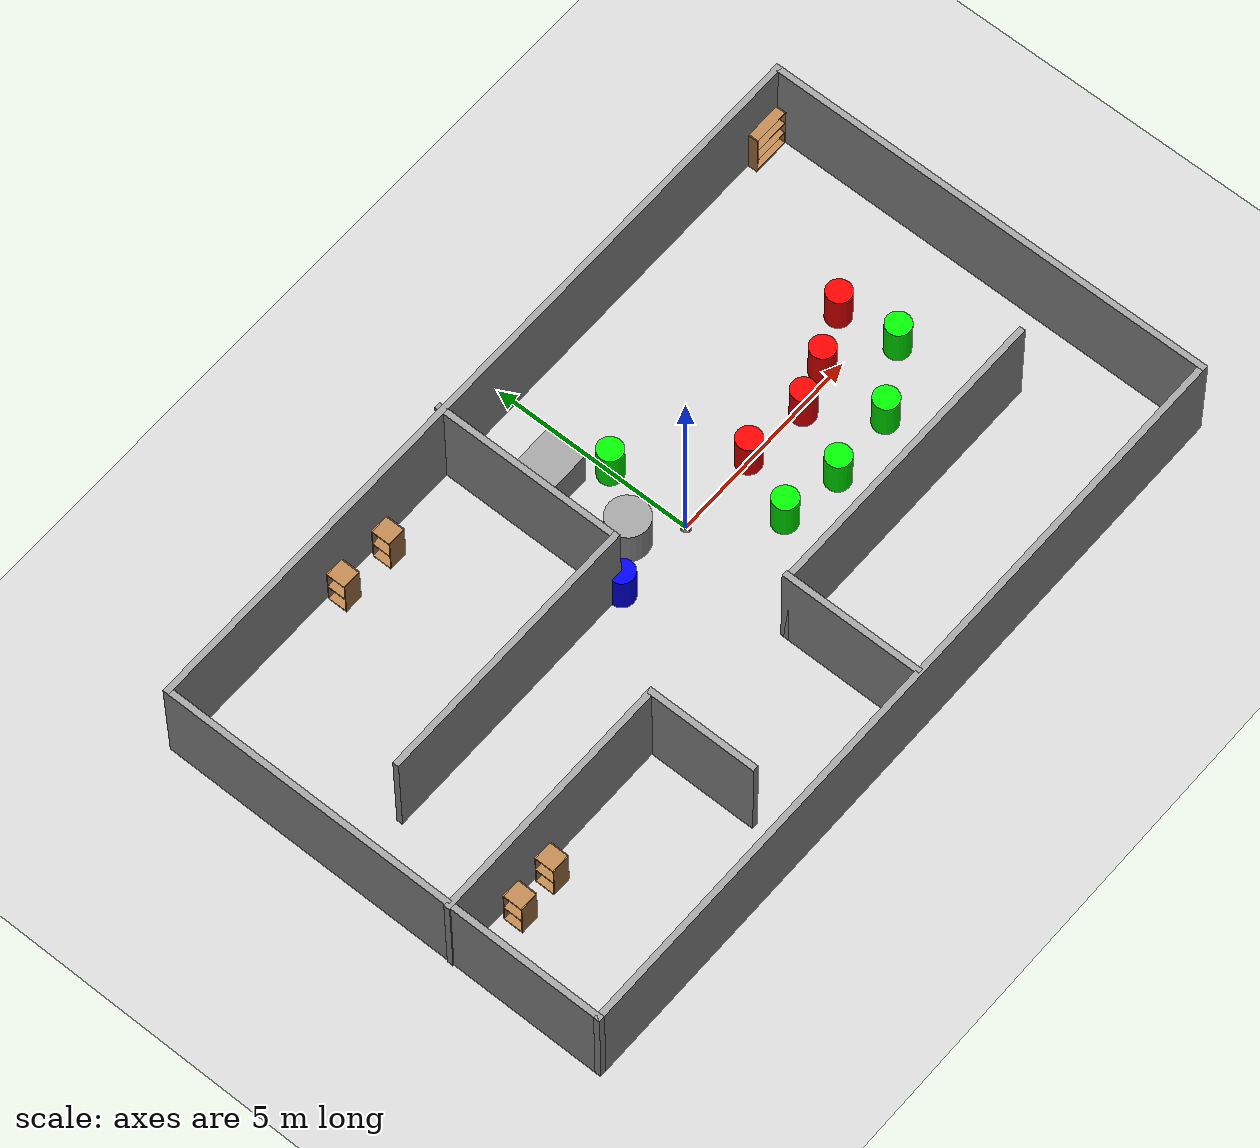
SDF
<sdf version="1.7">
 <world name="default">
  <light name="sun" type="directional">
   <pose>0 0 10 0 -0 0</pose>
   <diffuse>0.8 0.8 0.8 1</diffuse>
   <specular>0.2 0.2 0.2 1</specular>
   <attenuation>
    <range>1000</range>
    <constant>0.9</constant>
    <linear>0.01</linear>
    <quadratic>0.001</quadratic>
   </attenuation>
   <direction>-0.5 0.1 -0.9</direction>
   <spot><inner_angle>0</inner_angle><outer_angle>0</outer_angle><falloff>0</falloff></spot>
  </light>
  <model name="red_cylinder">
   <pose>2 0 0.5 0 -0 0</pose>
   <static>1</static>
   <link name="link">
    <collision name="collision">
     <geometry><cylinder><radius>0.3</radius><length>1</length></cylinder></geometry>
    </collision>
    <visual name="visual">
     <geometry><cylinder><radius>0.3</radius><length>1</length></cylinder></geometry>
     <material><ambient>1 0 0 1</ambient><diffuse>1 0 0 1</diffuse><specular>0.2 0.2 0.2 1</specular></material>
    </visual>
   </link>
  </model>
  <model name="green_cylinder">
   <pose>0 2 0.5 0 -0 0</pose>
   <static>1</static>
   <link name="link">
    <collision name="collision">
     <geometry><cylinder><radius>0.3</radius><length>1</length></cylinder></geometry>
    </collision>
    <visual name="visual">
     <geometry><cylinder><radius>0.3</radius><length>1</length></cylinder></geometry>
     <material><ambient>0 1 0 1</ambient><diffuse>0 1 0 1</diffuse><specular>0.2 0.2 0.2 1</specular></material>
    </visual>
   </link>
  </model>
  <model name="blue_cylinder">
   <pose>-2 0 0.5 0 -0 0</pose>
   <static>1</static>
   <link name="link">
    <collision name="collision">
     <geometry><cylinder><radius>0.3</radius><length>1</length></cylinder></geometry>
    </collision>
    <visual name="visual">
     <geometry><cylinder><radius>0.3</radius><length>1</length></cylinder></geometry>
     <material><ambient>0 0 1 1</ambient><diffuse>0 0 1 1</diffuse><specular>0.2 0.2 0.2 1</specular></material>
    </visual>
   </link>
  </model>
  <model name="ground_plane">
   <static>1</static>
   <link name="link">
    <collision name="collision">
     <geometry><plane><normal>0 0 1</normal><size>100 100</size></plane></geometry>
     <surface><friction><ode><mu>100</mu><mu2>50</mu2></ode></friction></surface>
    </collision>
    <visual name="visual">
     <cast_shadows>0</cast_shadows>
     <geometry><plane><normal>0 0 1</normal><size>100 100</size></plane></geometry>
     <material>
      <script><uri>file://media/materials/scripts/gazebo.material</uri><name>Gazebo/Grey</name></script>
     </material>
    </visual>
   </link>
  </model>
  <gravity>0 0 -9.8</gravity>
  <magnetic_field>6e-06 2.3e-05 -4.2e-05</magnetic_field>
  <atmosphere type="adiabatic"/>
  <physics type="ode">
   <max_step_size>0.001</max_step_size>
   <real_time_factor>1</real_time_factor>
   <real_time_update_rate>1000</real_time_update_rate>
  </physics>
  <scene><ambient>0.4 0.4 0.4 1</ambient><background>0.7 0.7 0.7 1</background><shadows>1</shadows></scene>
  <audio><device>default</device></audio>
  <spherical_coordinates>
   <surface_model>EARTH_WGS84</surface_model>
   <latitude_deg>0</latitude_deg>
   <longitude_deg>0</longitude_deg>
   <elevation>0</elevation>
   <heading_deg>0</heading_deg>
  </spherical_coordinates>
  <model name="room">
   <pose>-0.972666 -0.90388 0 0 -0 0</pose>
   <link name="Wall_66">
    <collision name="Wall_66_Collision">
     <geometry><box><size>19 0.15 2.5</size></box></geometry>
     <pose>0 0 1.25 0 -0 0</pose>
    </collision>
    <visual name="Wall_66_Visual">
     <pose>0 0 1.25 0 -0 0</pose>
     <geometry><box><size>19 0.15 2.5</size></box></geometry>
     <material>
      <script><uri>file://media/materials/scripts/gazebo.material</uri><name>Gazebo/Grey</name></script>
      <ambient>1 1 1 1</ambient>
     </material>
     <meta><layer>0</layer></meta>
    </visual>
    <pose>0.013921 5.50955 0 0 -0 0</pose>
   </link>
   <link name="Wall_67">
    <collision name="Wall_67_Collision">
     <geometry><box><size>11.25 0.15 2.5</size></box></geometry>
     <pose>0 0 1.25 0 -0 0</pose>
    </collision>
    <visual name="Wall_67_Visual">
     <pose>0 0 1.25 0 -0 0</pose>
     <geometry><box><size>11.25 0.15 2.5</size></box></geometry>
     <material>
      <script><uri>file://media/materials/scripts/gazebo.material</uri><name>Gazebo/Grey</name></script>
      <ambient>1 1 1 1</ambient>
     </material>
     <meta><layer>0</layer></meta>
    </visual>
    <pose>9.43892 -0.040455 0 0 -0 -1.5708</pose>
   </link>
   <link name="Wall_68">
    <collision name="Wall_68_Collision">
     <geometry><box><size>19 0.15 2.5</size></box></geometry>
     <pose>0 0 1.25 0 -0 0</pose>
    </collision>
    <visual name="Wall_68_Visual">
     <pose>0 0 1.25 0 -0 0</pose>
     <geometry><box><size>19 0.15 2.5</size></box></geometry>
     <material>
      <script><uri>file://media/materials/scripts/gazebo.material</uri><name>Gazebo/Grey</name></script>
      <ambient>1 1 1 1</ambient>
     </material>
     <meta><layer>0</layer></meta>
    </visual>
    <pose>0.013921 -5.59046 0 0 -0 3.14159</pose>
   </link>
   <link name="Wall_69">
    <collision name="Wall_69_Collision">
     <geometry><box><size>11.25 0.15 2.5</size></box></geometry>
     <pose>0 0 1.25 0 -0 0</pose>
    </collision>
    <visual name="Wall_69_Visual">
     <pose>0 0 1.25 0 -0 0</pose>
     <geometry><box><size>11.25 0.15 2.5</size></box></geometry>
     <material>
      <script><uri>file://media/materials/scripts/gazebo.material</uri><name>Gazebo/Grey</name></script>
      <ambient>1 1 1 1</ambient>
     </material>
     <meta><layer>0</layer></meta>
    </visual>
    <pose>-9.41108 -0.040455 0 0 -0 1.5708</pose>
   </link>
   <link name="Wall_71">
    <collision name="Wall_71_Collision">
     <geometry><box><size>4.75 0.15 2.5</size></box></geometry>
     <pose>0 0 1.25 0 -0 0</pose>
    </collision>
    <visual name="Wall_71_Visual">
     <pose>0 0 1.25 0 -0 0</pose>
     <geometry><box><size>4.75 0.15 2.5</size></box></geometry>
     <material>
      <script><uri>file://media/materials/scripts/gazebo.material</uri><name>Gazebo/Grey</name></script>
      <ambient>1 1 1 1</ambient>
     </material>
     <meta><layer>0</layer></meta>
    </visual>
    <pose>-1.11769 3.29046 0 0 -0 -1.5708</pose>
   </link>
   <link name="Wall_72">
    <collision name="Wall_72_Collision">
     <geometry><box><size>6.75 0.15 2.5</size></box></geometry>
     <pose>0 0 1.25 0 -0 0</pose>
    </collision>
    <visual name="Wall_72_Visual">
     <pose>0 0 1.25 0 -0 0</pose>
     <geometry><box><size>6.75 0.15 2.5</size></box></geometry>
     <material>
      <script><uri>file://media/materials/scripts/gazebo.material</uri><name>Gazebo/Grey</name></script>
      <ambient>1 1 1 1</ambient>
     </material>
     <meta><layer>0</layer></meta>
    </visual>
    <pose>-4.41769 0.990456 0 0 -0 3.14159</pose>
   </link>
   <link name="Wall_79">
    <collision name="Wall_79_Collision">
     <geometry><box><size>3.47722 0.15 2.5</size></box></geometry>
     <pose>0 0 1.25 0 -0 0</pose>
    </collision>
    <visual name="Wall_79_Visual">
     <pose>0 0 1.25 0 -0 0</pose>
     <geometry><box><size>3.47722 0.15 2.5</size></box></geometry>
     <material>
      <script><uri>file://media/materials/scripts/gazebo.material</uri><name>Gazebo/Grey</name></script>
      <ambient>1 1 1 1</ambient>
     </material>
     <meta><layer>0</layer></meta>
    </visual>
    <pose>0.391784 -3.86799 0 0 -0 1.5708</pose>
   </link>
   <link name="Wall_80">
    <collision name="Wall_80_Collision">
     <geometry><box><size>7.5 0.15 2.5</size></box></geometry>
     <pose>0 0 1.25 0 -0 0</pose>
    </collision>
    <visual name="Wall_80_Visual">
     <pose>0 0 1.25 0 -0 0</pose>
     <geometry><box><size>7.5 0.15 2.5</size></box></geometry>
     <material>
      <script><uri>file://media/materials/scripts/gazebo.material</uri><name>Gazebo/Grey</name></script>
      <ambient>1 1 1 1</ambient>
     </material>
     <meta><layer>0</layer></meta>
    </visual>
    <pose>4.06678 -2.24484 0 0 -0 0</pose>
   </link>
   <link name="Wall_85">
    <collision name="Wall_85_Collision">
     <geometry><box><size>6.25 0.15 2.5</size></box></geometry>
     <pose>0 0 1.25 0 -0 0</pose>
    </collision>
    <visual name="Wall_85_Visual">
     <pose>0 0 1.25 0 -0 0</pose>
     <geometry><box><size>6.25 0.15 2.5</size></box></geometry>
     <material>
      <script><uri>file://media/materials/scripts/gazebo.material</uri><name>Gazebo/Grey</name></script>
      <ambient>1 1 1 1</ambient>
     </material>
     <meta><layer>0</layer></meta>
    </visual>
    <pose>-6.38892 -1.80969 0 0 -0 0</pose>
   </link>
   <link name="Wall_86">
    <collision name="Wall_86_Collision">
     <geometry><box><size>2.75 0.15 2.5</size></box></geometry>
     <pose>0 0 1.25 0 -0 0</pose>
    </collision>
    <visual name="Wall_86_Visual">
     <pose>0 0 1.25 0 -0 0</pose>
     <geometry><box><size>2.75 0.15 2.5</size></box></geometry>
     <material>
      <script><uri>file://media/materials/scripts/gazebo.material</uri><name>Gazebo/Grey</name></script>
      <ambient>1 1 1 1</ambient>
     </material>
     <meta><layer>0</layer></meta>
    </visual>
    <pose>-3.33892 -3.10969 0 0 -0 -1.5708</pose>
   </link>
   <static>1</static>
  </model>
  <model name="bookshelf">
   <static>1</static>
   <link name="link">
    <inertial><mass>1</mass></inertial>
    <collision name="back">
     <pose>0 0.005 0.6 0 -0 0</pose>
     <geometry><box><size>0.9 0.01 1.2</size></box></geometry>
    </collision>
    <visual name="visual1">
     <pose>0 0.005 0.6 0 -0 0</pose>
     <geometry><box><size>0.9 0.01 1.2</size></box></geometry>
     <material>
      <script><uri>file://media/materials/scripts/gazebo.material</uri><name>Gazebo/Wood</name></script>
     </material>
    </visual>
    <collision name="left_side">
     <pose>0.45 -0.195 0.6 0 -0 0</pose>
     <geometry><box><size>0.02 0.4 1.2</size></box></geometry>
    </collision>
    <visual name="visual2">
     <pose>0.45 -0.195 0.6 0 -0 0</pose>
     <geometry><box><size>0.02 0.4 1.2</size></box></geometry>
     <material>
      <script><uri>file://media/materials/scripts/gazebo.material</uri><name>Gazebo/Wood</name></script>
     </material>
    </visual>
    <collision name="right_side">
     <pose>-0.45 -0.195 0.6 0 -0 0</pose>
     <geometry><box><size>0.02 0.4 1.2</size></box></geometry>
    </collision>
    <visual name="visual3">
     <pose>-0.45 -0.195 0.6 0 -0 0</pose>
     <geometry><box><size>0.02 0.4 1.2</size></box></geometry>
     <material>
      <script><uri>file://media/materials/scripts/gazebo.material</uri><name>Gazebo/Wood</name></script>
     </material>
    </visual>
    <collision name="bottom">
     <pose>0 -0.195 0.03 0 -0 0</pose>
     <geometry><box><size>0.88 0.4 0.06</size></box></geometry>
    </collision>
    <visual name="visual4">
     <pose>0 -0.195 0.03 0 -0 0</pose>
     <geometry><box><size>0.88 0.4 0.06</size></box></geometry>
     <material>
      <script><uri>file://media/materials/scripts/gazebo.material</uri><name>Gazebo/Wood</name></script>
     </material>
    </visual>
    <collision name="top">
     <pose>0 -0.195 1.19 0 -0 0</pose>
     <geometry><box><size>0.88 0.4 0.02</size></box></geometry>
    </collision>
    <visual name="visual5">
     <pose>0 -0.195 1.19 0 -0 0</pose>
     <geometry><box><size>0.88 0.4 0.02</size></box></geometry>
     <material>
      <script><uri>file://media/materials/scripts/gazebo.material</uri><name>Gazebo/Wood</name></script>
     </material>
    </visual>
    <collision name="low_shelf">
     <pose>0 -0.195 0.43 0 -0 0</pose>
     <geometry><box><size>0.88 0.4 0.02</size></box></geometry>
    </collision>
    <visual name="visual6">
     <pose>0 -0.195 0.43 0 -0 0</pose>
     <geometry><box><size>0.88 0.4 0.02</size></box></geometry>
     <material>
      <script><uri>file://media/materials/scripts/gazebo.material</uri><name>Gazebo/Wood</name></script>
     </material>
    </visual>
    <collision name="high_shelf">
     <pose>0 -0.195 0.8 0 -0 0</pose>
     <geometry><box><size>0.88 0.4 0.02</size></box></geometry>
    </collision>
    <visual name="visual7">
     <pose>0 -0.195 0.8 0 -0 0</pose>
     <geometry><box><size>0.88 0.4 0.02</size></box></geometry>
     <material>
      <script><uri>file://media/materials/scripts/gazebo.material</uri><name>Gazebo/Wood</name></script>
     </material>
    </visual>
   </link>
   <pose>7.91236 4.68506 0 0 -0 0</pose>
  </model>
  <model name="cabinet">
   <static>1</static>
   <link name="cabinet_bottom_plate">
    <inertial>
     <pose>0 0 -1 0 -0 0</pose>
     <inertia><ixx>2.05</ixx><ixy>0</ixy><ixz>0</ixz><iyy>2.05</iyy><iyz>0</iyz><izz>2.05</izz></inertia>
     <mass>25</mass>
    </inertial>
    <collision name="cabinet_bottom_plate_geom">
     <pose>0 0 0.01 0 -0 0</pose>
     <geometry><box><size>0.45 0.45 0.02</size></box></geometry>
    </collision>
    <visual name="cabinet_bottom_plate_geom_visual">
     <pose>0 0 0.01 0 -0 0</pose>
     <geometry><box><size>0.45 0.45 0.02</size></box></geometry>
     <material>
      <script><uri>file://media/materials/scripts/gazebo.material</uri><name>Gazebo/Wood</name></script>
     </material>
    </visual>
    <collision name="cabinet_bottom_plate_geom_cabinet_back_plate">
     <pose>0.235 0 0.51 0 -0 0</pose>
     <geometry><box><size>0.02 0.45 1.02</size></box></geometry>
    </collision>
    <visual name="cabinet_bottom_plate_geom_cabinet_back_plate_visual">
     <pose>0.235 0 0.51 0 -0 0</pose>
     <geometry><box><size>0.02 0.45 1.02</size></box></geometry>
     <material>
      <script><uri>file://media/materials/scripts/gazebo.material</uri><name>Gazebo/Wood</name></script>
     </material>
    </visual>
    <collision name="cabinet_bottom_plate_geom_cabinet_left_plate">
     <pose>0 0.235 0.51 0 -0 0</pose>
     <geometry><box><size>0.45 0.02 1.02</size></box></geometry>
    </collision>
    <visual name="cabinet_bottom_plate_geom_cabinet_left_plate_visual">
     <pose>0 0.235 0.51 0 -0 0</pose>
     <geometry><box><size>0.45 0.02 1.02</size></box></geometry>
     <material>
      <script><uri>file://media/materials/scripts/gazebo.material</uri><name>Gazebo/Wood</name></script>
     </material>
    </visual>
    <collision name="cabinet_bottom_plate_geom_cabinet_middle_plate">
     <pose>0 0 0.51 0 -0 0</pose>
     <geometry><box><size>0.45 0.45 0.02</size></box></geometry>
    </collision>
    <visual name="cabinet_bottom_plate_geom_cabinet_middle_plate_visual">
     <pose>0 0 0.51 0 -0 0</pose>
     <geometry><box><size>0.45 0.45 0.02</size></box></geometry>
     <material>
      <script><uri>file://media/materials/scripts/gazebo.material</uri><name>Gazebo/Wood</name></script>
     </material>
    </visual>
    <collision name="cabinet_bottom_plate_geom_cabinet_right_plate">
     <pose>0 -0.235 0.51 0 -0 0</pose>
     <geometry><box><size>0.45 0.02 1.02</size></box></geometry>
    </collision>
    <visual name="cabinet_bottom_plate_geom_cabinet_right_plate_visual">
     <pose>0 -0.235 0.51 0 -0 0</pose>
     <geometry><box><size>0.45 0.02 1.02</size></box></geometry>
     <material>
      <script><uri>file://media/materials/scripts/gazebo.material</uri><name>Gazebo/Wood</name></script>
     </material>
    </visual>
    <collision name="cabinet_bottom_plate_geom_cabinet_top_plate">
     <pose>0 0 1.01 0 -0 0</pose>
     <geometry><box><size>0.45 0.45 0.02</size></box></geometry>
    </collision>
    <visual name="cabinet_bottom_plate_geom_cabinet_top_plate_visual">
     <pose>0 0 1.01 0 -0 0</pose>
     <geometry><box><size>0.45 0.45 0.02</size></box></geometry>
     <material>
      <script><uri>file://media/materials/scripts/gazebo.material</uri><name>Gazebo/Wood</name></script>
     </material>
    </visual>
   </link>
   <pose>-4.31975 4.20897 0 0 -0 0</pose>
  </model>
  <model name="cabinet_0">
   <static>1</static>
   <link name="cabinet_bottom_plate">
    <inertial>
     <pose>0 0 -1 0 -0 0</pose>
     <inertia><ixx>2.05</ixx><ixy>0</ixy><ixz>0</ixz><iyy>2.05</iyy><iyz>0</iyz><izz>2.05</izz></inertia>
     <mass>25</mass>
    </inertial>
    <collision name="cabinet_bottom_plate_geom">
     <pose>0 0 0.01 0 -0 0</pose>
     <geometry><box><size>0.45 0.45 0.02</size></box></geometry>
    </collision>
    <visual name="cabinet_bottom_plate_geom_visual">
     <pose>0 0 0.01 0 -0 0</pose>
     <geometry><box><size>0.45 0.45 0.02</size></box></geometry>
     <material>
      <script><uri>file://media/materials/scripts/gazebo.material</uri><name>Gazebo/Wood</name></script>
     </material>
    </visual>
    <collision name="cabinet_bottom_plate_geom_cabinet_back_plate">
     <pose>0.235 0 0.51 0 -0 0</pose>
     <geometry><box><size>0.02 0.45 1.02</size></box></geometry>
    </collision>
    <visual name="cabinet_bottom_plate_geom_cabinet_back_plate_visual">
     <pose>0.235 0 0.51 0 -0 0</pose>
     <geometry><box><size>0.02 0.45 1.02</size></box></geometry>
     <material>
      <script><uri>file://media/materials/scripts/gazebo.material</uri><name>Gazebo/Wood</name></script>
     </material>
    </visual>
    <collision name="cabinet_bottom_plate_geom_cabinet_left_plate">
     <pose>0 0.235 0.51 0 -0 0</pose>
     <geometry><box><size>0.45 0.02 1.02</size></box></geometry>
    </collision>
    <visual name="cabinet_bottom_plate_geom_cabinet_left_plate_visual">
     <pose>0 0.235 0.51 0 -0 0</pose>
     <geometry><box><size>0.45 0.02 1.02</size></box></geometry>
     <material>
      <script><uri>file://media/materials/scripts/gazebo.material</uri><name>Gazebo/Wood</name></script>
     </material>
    </visual>
    <collision name="cabinet_bottom_plate_geom_cabinet_middle_plate">
     <pose>0 0 0.51 0 -0 0</pose>
     <geometry><box><size>0.45 0.45 0.02</size></box></geometry>
    </collision>
    <visual name="cabinet_bottom_plate_geom_cabinet_middle_plate_visual">
     <pose>0 0 0.51 0 -0 0</pose>
     <geometry><box><size>0.45 0.45 0.02</size></box></geometry>
     <material>
      <script><uri>file://media/materials/scripts/gazebo.material</uri><name>Gazebo/Wood</name></script>
     </material>
    </visual>
    <collision name="cabinet_bottom_plate_geom_cabinet_right_plate">
     <pose>0 -0.235 0.51 0 -0 0</pose>
     <geometry><box><size>0.45 0.02 1.02</size></box></geometry>
    </collision>
    <visual name="cabinet_bottom_plate_geom_cabinet_right_plate_visual">
     <pose>0 -0.235 0.51 0 -0 0</pose>
     <geometry><box><size>0.45 0.02 1.02</size></box></geometry>
     <material>
      <script><uri>file://media/materials/scripts/gazebo.material</uri><name>Gazebo/Wood</name></script>
     </material>
    </visual>
    <collision name="cabinet_bottom_plate_geom_cabinet_top_plate">
     <pose>0 0 1.01 0 -0 0</pose>
     <geometry><box><size>0.45 0.45 0.02</size></box></geometry>
    </collision>
    <visual name="cabinet_bottom_plate_geom_cabinet_top_plate_visual">
     <pose>0 0 1.01 0 -0 0</pose>
     <geometry><box><size>0.45 0.45 0.02</size></box></geometry>
     <material>
      <script><uri>file://media/materials/scripts/gazebo.material</uri><name>Gazebo/Wood</name></script>
     </material>
    </visual>
   </link>
   <pose>-5.63889 4.25649 0 0 -0 0</pose>
  </model>
  <model name="cabinet_1">
   <static>1</static>
   <link name="cabinet_bottom_plate">
    <inertial>
     <pose>0 0 -1 0 -0 0</pose>
     <inertia><ixx>2.05</ixx><ixy>0</ixy><ixz>0</ixz><iyy>2.05</iyy><iyz>0</iyz><izz>2.05</izz></inertia>
     <mass>25</mass>
    </inertial>
    <collision name="cabinet_bottom_plate_geom">
     <pose>0 0 0.01 0 -0 0</pose>
     <geometry><box><size>0.45 0.45 0.02</size></box></geometry>
    </collision>
    <visual name="cabinet_bottom_plate_geom_visual">
     <pose>0 0 0.01 0 -0 0</pose>
     <geometry><box><size>0.45 0.45 0.02</size></box></geometry>
     <material>
      <script><uri>file://media/materials/scripts/gazebo.material</uri><name>Gazebo/Wood</name></script>
     </material>
    </visual>
    <collision name="cabinet_bottom_plate_geom_cabinet_back_plate">
     <pose>0.235 0 0.51 0 -0 0</pose>
     <geometry><box><size>0.02 0.45 1.02</size></box></geometry>
    </collision>
    <visual name="cabinet_bottom_plate_geom_cabinet_back_plate_visual">
     <pose>0.235 0 0.51 0 -0 0</pose>
     <geometry><box><size>0.02 0.45 1.02</size></box></geometry>
     <material>
      <script><uri>file://media/materials/scripts/gazebo.material</uri><name>Gazebo/Wood</name></script>
     </material>
    </visual>
    <collision name="cabinet_bottom_plate_geom_cabinet_left_plate">
     <pose>0 0.235 0.51 0 -0 0</pose>
     <geometry><box><size>0.45 0.02 1.02</size></box></geometry>
    </collision>
    <visual name="cabinet_bottom_plate_geom_cabinet_left_plate_visual">
     <pose>0 0.235 0.51 0 -0 0</pose>
     <geometry><box><size>0.45 0.02 1.02</size></box></geometry>
     <material>
      <script><uri>file://media/materials/scripts/gazebo.material</uri><name>Gazebo/Wood</name></script>
     </material>
    </visual>
    <collision name="cabinet_bottom_plate_geom_cabinet_middle_plate">
     <pose>0 0 0.51 0 -0 0</pose>
     <geometry><box><size>0.45 0.45 0.02</size></box></geometry>
    </collision>
    <visual name="cabinet_bottom_plate_geom_cabinet_middle_plate_visual">
     <pose>0 0 0.51 0 -0 0</pose>
     <geometry><box><size>0.45 0.45 0.02</size></box></geometry>
     <material>
      <script><uri>file://media/materials/scripts/gazebo.material</uri><name>Gazebo/Wood</name></script>
     </material>
    </visual>
    <collision name="cabinet_bottom_plate_geom_cabinet_right_plate">
     <pose>0 -0.235 0.51 0 -0 0</pose>
     <geometry><box><size>0.45 0.02 1.02</size></box></geometry>
    </collision>
    <visual name="cabinet_bottom_plate_geom_cabinet_right_plate_visual">
     <pose>0 -0.235 0.51 0 -0 0</pose>
     <geometry><box><size>0.45 0.02 1.02</size></box></geometry>
     <material>
      <script><uri>file://media/materials/scripts/gazebo.material</uri><name>Gazebo/Wood</name></script>
     </material>
    </visual>
    <collision name="cabinet_bottom_plate_geom_cabinet_top_plate">
     <pose>0 0 1.01 0 -0 0</pose>
     <geometry><box><size>0.45 0.45 0.02</size></box></geometry>
    </collision>
    <visual name="cabinet_bottom_plate_geom_cabinet_top_plate_visual">
     <pose>0 0 1.01 0 -0 0</pose>
     <geometry><box><size>0.45 0.45 0.02</size></box></geometry>
     <material>
      <script><uri>file://media/materials/scripts/gazebo.material</uri><name>Gazebo/Wood</name></script>
     </material>
    </visual>
   </link>
   <pose>-0.201253 -3.92041 0 0 -0 0</pose>
  </model>
  <model name="cabinet_2">
   <static>1</static>
   <link name="cabinet_bottom_plate">
    <inertial>
     <pose>0 0 -1 0 -0 0</pose>
     <inertia><ixx>2.05</ixx><ixy>0</ixy><ixz>0</ixz><iyy>2.05</iyy><iyz>0</iyz><izz>2.05</izz></inertia>
     <mass>25</mass>
    </inertial>
    <collision name="cabinet_bottom_plate_geom">
     <pose>0 0 0.01 0 -0 0</pose>
     <geometry><box><size>0.45 0.45 0.02</size></box></geometry>
    </collision>
    <visual name="cabinet_bottom_plate_geom_visual">
     <pose>0 0 0.01 0 -0 0</pose>
     <geometry><box><size>0.45 0.45 0.02</size></box></geometry>
     <material>
      <script><uri>file://media/materials/scripts/gazebo.material</uri><name>Gazebo/Wood</name></script>
     </material>
    </visual>
    <collision name="cabinet_bottom_plate_geom_cabinet_back_plate">
     <pose>0.235 0 0.51 0 -0 0</pose>
     <geometry><box><size>0.02 0.45 1.02</size></box></geometry>
    </collision>
    <visual name="cabinet_bottom_plate_geom_cabinet_back_plate_visual">
     <pose>0.235 0 0.51 0 -0 0</pose>
     <geometry><box><size>0.02 0.45 1.02</size></box></geometry>
     <material>
      <script><uri>file://media/materials/scripts/gazebo.material</uri><name>Gazebo/Wood</name></script>
     </material>
    </visual>
    <collision name="cabinet_bottom_plate_geom_cabinet_left_plate">
     <pose>0 0.235 0.51 0 -0 0</pose>
     <geometry><box><size>0.45 0.02 1.02</size></box></geometry>
    </collision>
    <visual name="cabinet_bottom_plate_geom_cabinet_left_plate_visual">
     <pose>0 0.235 0.51 0 -0 0</pose>
     <geometry><box><size>0.45 0.02 1.02</size></box></geometry>
     <material>
      <script><uri>file://media/materials/scripts/gazebo.material</uri><name>Gazebo/Wood</name></script>
     </material>
    </visual>
    <collision name="cabinet_bottom_plate_geom_cabinet_middle_plate">
     <pose>0 0 0.51 0 -0 0</pose>
     <geometry><box><size>0.45 0.45 0.02</size></box></geometry>
    </collision>
    <visual name="cabinet_bottom_plate_geom_cabinet_middle_plate_visual">
     <pose>0 0 0.51 0 -0 0</pose>
     <geometry><box><size>0.45 0.45 0.02</size></box></geometry>
     <material>
      <script><uri>file://media/materials/scripts/gazebo.material</uri><name>Gazebo/Wood</name></script>
     </material>
    </visual>
    <collision name="cabinet_bottom_plate_geom_cabinet_right_plate">
     <pose>0 -0.235 0.51 0 -0 0</pose>
     <geometry><box><size>0.45 0.02 1.02</size></box></geometry>
    </collision>
    <visual name="cabinet_bottom_plate_geom_cabinet_right_plate_visual">
     <pose>0 -0.235 0.51 0 -0 0</pose>
     <geometry><box><size>0.45 0.02 1.02</size></box></geometry>
     <material>
      <script><uri>file://media/materials/scripts/gazebo.material</uri><name>Gazebo/Wood</name></script>
     </material>
    </visual>
    <collision name="cabinet_bottom_plate_geom_cabinet_top_plate">
     <pose>0 0 1.01 0 -0 0</pose>
     <geometry><box><size>0.45 0.45 0.02</size></box></geometry>
    </collision>
    <visual name="cabinet_bottom_plate_geom_cabinet_top_plate_visual">
     <pose>0 0 1.01 0 -0 0</pose>
     <geometry><box><size>0.45 0.45 0.02</size></box></geometry>
     <material>
      <script><uri>file://media/materials/scripts/gazebo.material</uri><name>Gazebo/Wood</name></script>
     </material>
    </visual>
   </link>
   <pose>-0.211824 -5.1227 0 0 -0 0</pose>
  </model>
  <model name="cabinet_3">
   <static>1</static>
   <link name="cabinet_bottom_plate">
    <inertial>
     <pose>0 0 -1 0 -0 0</pose>
     <inertia><ixx>2.05</ixx><ixy>0</ixy><ixz>0</ixz><iyy>2.05</iyy><iyz>0</iyz><izz>2.05</izz></inertia>
     <mass>25</mass>
    </inertial>
    <collision name="cabinet_bottom_plate_geom">
     <pose>0 0 0.01 0 -0 0</pose>
     <geometry><box><size>0.45 0.45 0.02</size></box></geometry>
    </collision>
    <visual name="cabinet_bottom_plate_geom_visual">
     <pose>0 0 0.01 0 -0 0</pose>
     <geometry><box><size>0.45 0.45 0.02</size></box></geometry>
     <material>
      <script><uri>file://media/materials/scripts/gazebo.material</uri><name>Gazebo/Wood</name></script>
     </material>
    </visual>
    <collision name="cabinet_bottom_plate_geom_cabinet_back_plate">
     <pose>0.235 0 0.51 0 -0 0</pose>
     <geometry><box><size>0.02 0.45 1.02</size></box></geometry>
    </collision>
    <visual name="cabinet_bottom_plate_geom_cabinet_back_plate_visual">
     <pose>0.235 0 0.51 0 -0 0</pose>
     <geometry><box><size>0.02 0.45 1.02</size></box></geometry>
     <material>
      <script><uri>file://media/materials/scripts/gazebo.material</uri><name>Gazebo/Wood</name></script>
     </material>
    </visual>
    <collision name="cabinet_bottom_plate_geom_cabinet_left_plate">
     <pose>0 0.235 0.51 0 -0 0</pose>
     <geometry><box><size>0.45 0.02 1.02</size></box></geometry>
    </collision>
    <visual name="cabinet_bottom_plate_geom_cabinet_left_plate_visual">
     <pose>0 0.235 0.51 0 -0 0</pose>
     <geometry><box><size>0.45 0.02 1.02</size></box></geometry>
     <material>
      <script><uri>file://media/materials/scripts/gazebo.material</uri><name>Gazebo/Wood</name></script>
     </material>
    </visual>
    <collision name="cabinet_bottom_plate_geom_cabinet_middle_plate">
     <pose>0 0 0.51 0 -0 0</pose>
     <geometry><box><size>0.45 0.45 0.02</size></box></geometry>
    </collision>
    <visual name="cabinet_bottom_plate_geom_cabinet_middle_plate_visual">
     <pose>0 0 0.51 0 -0 0</pose>
     <geometry><box><size>0.45 0.45 0.02</size></box></geometry>
     <material>
      <script><uri>file://media/materials/scripts/gazebo.material</uri><name>Gazebo/Wood</name></script>
     </material>
    </visual>
    <collision name="cabinet_bottom_plate_geom_cabinet_right_plate">
     <pose>0 -0.235 0.51 0 -0 0</pose>
     <geometry><box><size>0.45 0.02 1.02</size></box></geometry>
    </collision>
    <visual name="cabinet_bottom_plate_geom_cabinet_right_plate_visual">
     <pose>0 -0.235 0.51 0 -0 0</pose>
     <geometry><box><size>0.45 0.02 1.02</size></box></geometry>
     <material>
      <script><uri>file://media/materials/scripts/gazebo.material</uri><name>Gazebo/Wood</name></script>
     </material>
    </visual>
    <collision name="cabinet_bottom_plate_geom_cabinet_top_plate">
     <pose>0 0 1.01 0 -0 0</pose>
     <geometry><box><size>0.45 0.45 0.02</size></box></geometry>
    </collision>
    <visual name="cabinet_bottom_plate_geom_cabinet_top_plate_visual">
     <pose>0 0 1.01 0 -0 0</pose>
     <geometry><box><size>0.45 0.45 0.02</size></box></geometry>
     <material>
      <script><uri>file://media/materials/scripts/gazebo.material</uri><name>Gazebo/Wood</name></script>
     </material>
    </visual>
   </link>
   <pose>-8.8359 -3.13197 0 0 -0 0</pose>
  </model>
  <model name="cabinet_4">
   <static>1</static>
   <link name="cabinet_bottom_plate">
    <inertial>
     <pose>0 0 -1 0 -0 0</pose>
     <inertia><ixx>2.05</ixx><ixy>0</ixy><ixz>0</ixz><iyy>2.05</iyy><iyz>0</iyz><izz>2.05</izz></inertia>
     <mass>25</mass>
    </inertial>
    <collision name="cabinet_bottom_plate_geom">
     <pose>0 0 0.01 0 -0 0</pose>
     <geometry><box><size>0.45 0.45 0.02</size></box></geometry>
    </collision>
    <visual name="cabinet_bottom_plate_geom_visual">
     <pose>0 0 0.01 0 -0 0</pose>
     <geometry><box><size>0.45 0.45 0.02</size></box></geometry>
     <material>
      <script><uri>file://media/materials/scripts/gazebo.material</uri><name>Gazebo/Wood</name></script>
     </material>
    </visual>
    <collision name="cabinet_bottom_plate_geom_cabinet_back_plate">
     <pose>0.235 0 0.51 0 -0 0</pose>
     <geometry><box><size>0.02 0.45 1.02</size></box></geometry>
    </collision>
    <visual name="cabinet_bottom_plate_geom_cabinet_back_plate_visual">
     <pose>0.235 0 0.51 0 -0 0</pose>
     <geometry><box><size>0.02 0.45 1.02</size></box></geometry>
     <material>
      <script><uri>file://media/materials/scripts/gazebo.material</uri><name>Gazebo/Wood</name></script>
     </material>
    </visual>
    <collision name="cabinet_bottom_plate_geom_cabinet_left_plate">
     <pose>0 0.235 0.51 0 -0 0</pose>
     <geometry><box><size>0.45 0.02 1.02</size></box></geometry>
    </collision>
    <visual name="cabinet_bottom_plate_geom_cabinet_left_plate_visual">
     <pose>0 0.235 0.51 0 -0 0</pose>
     <geometry><box><size>0.45 0.02 1.02</size></box></geometry>
     <material>
      <script><uri>file://media/materials/scripts/gazebo.material</uri><name>Gazebo/Wood</name></script>
     </material>
    </visual>
    <collision name="cabinet_bottom_plate_geom_cabinet_middle_plate">
     <pose>0 0 0.51 0 -0 0</pose>
     <geometry><box><size>0.45 0.45 0.02</size></box></geometry>
    </collision>
    <visual name="cabinet_bottom_plate_geom_cabinet_middle_plate_visual">
     <pose>0 0 0.51 0 -0 0</pose>
     <geometry><box><size>0.45 0.45 0.02</size></box></geometry>
     <material>
      <script><uri>file://media/materials/scripts/gazebo.material</uri><name>Gazebo/Wood</name></script>
     </material>
    </visual>
    <collision name="cabinet_bottom_plate_geom_cabinet_right_plate">
     <pose>0 -0.235 0.51 0 -0 0</pose>
     <geometry><box><size>0.45 0.02 1.02</size></box></geometry>
    </collision>
    <visual name="cabinet_bottom_plate_geom_cabinet_right_plate_visual">
     <pose>0 -0.235 0.51 0 -0 0</pose>
     <geometry><box><size>0.45 0.02 1.02</size></box></geometry>
     <material>
      <script><uri>file://media/materials/scripts/gazebo.material</uri><name>Gazebo/Wood</name></script>
     </material>
    </visual>
    <collision name="cabinet_bottom_plate_geom_cabinet_top_plate">
     <pose>0 0 1.01 0 -0 0</pose>
     <geometry><box><size>0.45 0.45 0.02</size></box></geometry>
    </collision>
    <visual name="cabinet_bottom_plate_geom_cabinet_top_plate_visual">
     <pose>0 0 1.01 0 -0 0</pose>
     <geometry><box><size>0.45 0.45 0.02</size></box></geometry>
     <material>
      <script><uri>file://media/materials/scripts/gazebo.material</uri><name>Gazebo/Wood</name></script>
     </material>
    </visual>
   </link>
   <pose>-7.80202 -3.07286 0 0 -0 0</pose>
  </model>
  <model name="unit_cylinder">
   <pose>-0.961045 0.717233 0.499993 -3e-06 3e-06 0</pose>
   <link name="link">
    <inertial>
     <mass>1</mass>
     <inertia><ixx>0.145833</ixx><ixy>0</ixy><ixz>0</ixz><iyy>0.145833</iyy><iyz>0</iyz><izz>0.125</izz></inertia>
    </inertial>
    <collision name="collision">
     <geometry><cylinder><radius>0.5</radius><length>1</length></cylinder></geometry>
    </collision>
    <visual name="visual">
     <geometry><cylinder><radius>0.5</radius><length>1</length></cylinder></geometry>
     <material>
      <script><name>Gazebo/Grey</name><uri>file://media/materials/scripts/gazebo.material</uri></script>
     </material>
    </visual>
   </link>
  </model>
  <model name="unit_box">
   <pose>-0.958126 2.77838 0.499995 0 -1e-05 0</pose>
   <link name="link">
    <inertial>
     <mass>1</mass>
     <inertia>
      <ixx>0.166667</ixx>
      <ixy>0</ixy>
      <ixz>0</ixz>
      <iyy>0.166667</iyy>
      <iyz>0</iyz>
      <izz>0.166667</izz>
     </inertia>
    </inertial>
    <collision name="collision"><geometry><box><size>1 1 1</size></box></geometry></collision>
    <visual name="visual">
     <geometry><box><size>1 1 1</size></box></geometry>
     <material>
      <script><name>Gazebo/Grey</name><uri>file://media/materials/scripts/gazebo.material</uri></script>
     </material>
    </visual>
   </link>
  </model>
  <model name="fishbot">
   <link name="base_footprint">
    <inertial>
     <pose>0.000943 0 0.097085 0 -0 0</pose>
     <mass>1.06</mass>
     <inertia>
      <ixx>0.00451792</ixx>
      <ixy>0</ixy>
      <ixz>-6.89151e-05</ixz>
      <iyy>0.00460898</iyy>
      <iyz>0</iyz>
      <izz>0.00511489</izz>
     </inertia>
    </inertial>
    <collision name="base_footprint_fixed_joint_lump__base_link_collision">
     <pose>0 0 0.091 0 -0 0</pose>
     <geometry><cylinder><length>0.12</length><radius>0.12</radius></cylinder></geometry>
    </collision>
    <collision name="base_footprint_fixed_joint_lump__camera_link_collision_1">
     <pose>0.1 0 0.166 0 -0 0</pose>
     <geometry><box><size>0.02 0.1 0.02</size></box></geometry>
    </collision>
    <collision name="base_footprint_fixed_joint_lump__imu_link_collision_2">
     <pose>0 0 0.111 0 -0 0</pose>
     <geometry><box><size>0.02 0.02 0.02</size></box></geometry>
    </collision>
    <collision name="base_footprint_fixed_joint_lump__laser_cylinder_link_collision_3">
     <pose>0 0 0.191 0 -0 0</pose>
     <geometry><cylinder><length>0.1</length><radius>0.01</radius></cylinder></geometry>
    </collision>
    <collision name="base_footprint_fixed_joint_lump__laser_link_collision_4">
     <pose>0 0 0.241 0 -0 0</pose>
     <geometry><cylinder><length>0.02</length><radius>0.02</radius></cylinder></geometry>
    </collision>
    <visual name="base_footprint_fixed_joint_lump__base_link_visual">
     <pose>0 0 0.091 0 -0 0</pose>
     <geometry><cylinder><length>0.12</length><radius>0.12</radius></cylinder></geometry>
    </visual>
    <visual name="base_footprint_fixed_joint_lump__camera_link_visual_1">
     <pose>0.1 0 0.166 0 -0 0</pose>
     <geometry><box><size>0.02 0.1 0.02</size></box></geometry>
    </visual>
    <visual name="base_footprint_fixed_joint_lump__imu_link_visual_2">
     <pose>0 0 0.111 0 -0 0</pose>
     <geometry><box><size>0.02 0.02 0.02</size></box></geometry>
    </visual>
    <visual name="base_footprint_fixed_joint_lump__laser_cylinder_link_visual_3">
     <pose>0 0 0.191 0 -0 0</pose>
     <geometry><cylinder><length>0.1</length><radius>0.01</radius></cylinder></geometry>
     <material>
      <script><name>Gazebo/Black</name><uri>file://media/materials/scripts/gazebo.material</uri></script>
     </material>
    </visual>
    <visual name="base_footprint_fixed_joint_lump__laser_link_visual_4">
     <pose>0 0 0.241 0 -0 0</pose>
     <geometry><cylinder><length>0.02</length><radius>0.02</radius></cylinder></geometry>
     <material>
      <script><name>Gazebo/Black</name><uri>file://media/materials/scripts/gazebo.material</uri></script>
     </material>
    </visual>
    <sensor name="camera_sensor" type="depth">
     <plugin name="depth_camera" filename="libgazebo_ros_camera.so">
      <frame_name>camera_optical_link</frame_name>
     </plugin>
     <always_on>1</always_on>
     <update_rate>10</update_rate>
     <camera name="camera">
      <horizontal_fov>1.50098</horizontal_fov>
      <image><width>800</width><height>600</height><format>R8G8B8</format></image>
      <distortion><k1>0</k1><k2>0</k2><k3>0</k3><p1>0</p1><p2>0</p2><center>0.5 0.5</center></distortion>
      <clip><near>0.1</near><far>100</far></clip>
     </camera>
     <pose>0.1 0 0.166 0 -0 0</pose>
    </sensor>
    <sensor name="imu_sensor" type="imu">
     <plugin name="imu_plugin" filename="libgazebo_ros_imu_sensor.so">
      <ros><namespace>/</namespace><remapping>~/out:=imu</remapping></ros>
      <initial_orientation_as_reference>0</initial_orientation_as_reference>
     </plugin>
     <update_rate>100</update_rate>
     <always_on>1</always_on>
     <imu>
      <angular_velocity>
       <x>
        <noise type="gaussian">
         <mean>0</mean>
         <stddev>0.0002</stddev>
         <bias_mean>7.5e-06</bias_mean>
         <bias_stddev>8e-07</bias_stddev>
        </noise>
       </x>
       <y>
        <noise type="gaussian">
         <mean>0</mean>
         <stddev>0.0002</stddev>
         <bias_mean>7.5e-06</bias_mean>
         <bias_stddev>8e-07</bias_stddev>
        </noise>
       </y>
       <z>
        <noise type="gaussian">
         <mean>0</mean>
         <stddev>0.0002</stddev>
         <bias_mean>7.5e-06</bias_mean>
         <bias_stddev>8e-07</bias_stddev>
        </noise>
       </z>
      </angular_velocity>
      <linear_acceleration>
       <x>
        <noise type="gaussian">
         <mean>0</mean>
         <stddev>0.017</stddev>
         <bias_mean>0.1</bias_mean>
         <bias_stddev>0.001</bias_stddev>
        </noise>
       </x>
       <y>
        <noise type="gaussian">
         <mean>0</mean>
         <stddev>0.017</stddev>
         <bias_mean>0.1</bias_mean>
         <bias_stddev>0.001</bias_stddev>
        </noise>
       </y>
       <z>
        <noise type="gaussian">
         <mean>0</mean>
         <stddev>0.017</stddev>
         <bias_mean>0.1</bias_mean>
         <bias_stddev>0.001</bias_stddev>
        </noise>
       </z>
      </linear_acceleration>
     </imu>
     <pose>0 0 0.111 0 -0 0</pose>
    </sensor>
    <sensor name="laserscan" type="ray">
     <plugin name="laserscan" filename="libgazebo_ros_ray_sensor.so">
      <ros><namespace>/</namespace><remapping>~/out:=scan</remapping></ros>
      <output_type>sensor_msgs/LaserScan</output_type>
      <frame_name>laser_link</frame_name>
     </plugin>
     <always_on>1</always_on>
     <visualize>1</visualize>
     <update_rate>5</update_rate>
     <ray>
      <scan>
       <horizontal>
        <samples>360</samples>
        <resolution>1</resolution>
        <min_angle>0</min_angle>
        <max_angle>6.28</max_angle>
       </horizontal>
       <vertical><samples>1</samples><min_angle>0</min_angle><max_angle>0</max_angle></vertical>
      </scan>
      <range><min>0.12</min><max>8</max><resolution>0.015</resolution></range>
      <noise><type>gaussian</type><mean>0</mean><stddev>0.01</stddev></noise>
     </ray>
     <pose>0 0 0.241 0 -0 0</pose>
    </sensor>
   </link>
   <joint name="back_wheel_joint" type="revolute">
    <pose relative_to="base_footprint">-0.08 0 0.031 0 -0 0</pose>
    <parent>base_footprint</parent>
    <child>back_wheel_link</child>
    <axis>
     <xyz>1 0 0</xyz>
     <limit><lower>-1e+16</lower><upper>1e+16</upper></limit>
     <dynamics><spring_reference>0</spring_reference><spring_stiffness>0</spring_stiffness></dynamics>
    </axis>
   </joint>
   <link name="back_wheel_link">
    <pose relative_to="back_wheel_joint">0 0 0 0 -0 0</pose>
    <inertial>
     <mass>0.1</mass>
     <inertia>
      <ixx>3.89333e-05</ixx>
      <ixy>0</ixy>
      <ixz>0</ixz>
      <iyy>3.89333e-05</iyy>
      <iyz>0</iyz>
      <izz>5.12e-05</izz>
     </inertia>
    </inertial>
    <collision name="back_wheel_link_collision">
     <pose>0 0 0 1.57079 -0 1.57079</pose>
     <geometry><cylinder><length>0.04</length><radius>0.032</radius></cylinder></geometry>
     <surface>
      <contact><ode><kp>1e+09</kp><kd>1</kd></ode></contact>
      <friction><ode><mu>1</mu><mu2>0.1</mu2></ode></friction>
     </surface>
    </collision>
    <visual name="back_wheel_link_visual">
     <pose>0 0 0 1.57079 -0 1.57079</pose>
     <geometry><cylinder><length>0.04</length><radius>0.032</radius></cylinder></geometry>
    </visual>
   </link>
   <joint name="front_wheel_joint" type="revolute">
    <pose relative_to="base_footprint">0.08 0 0.031 0 -0 0</pose>
    <parent>base_footprint</parent>
    <child>front_wheel_link</child>
    <axis>
     <xyz>1 0 0</xyz>
     <limit><lower>-1e+16</lower><upper>1e+16</upper></limit>
     <dynamics><spring_reference>0</spring_reference><spring_stiffness>0</spring_stiffness></dynamics>
    </axis>
   </joint>
   <link name="front_wheel_link">
    <pose relative_to="front_wheel_joint">0 0 0 0 -0 0</pose>
    <inertial>
     <mass>0.1</mass>
     <inertia>
      <ixx>3.89333e-05</ixx>
      <ixy>0</ixy>
      <ixz>0</ixz>
      <iyy>3.89333e-05</iyy>
      <iyz>0</iyz>
      <izz>5.12e-05</izz>
     </inertia>
    </inertial>
    <collision name="front_wheel_link_collision">
     <pose>0 0 0 1.57079 -0 1.57079</pose>
     <geometry><cylinder><length>0.04</length><radius>0.032</radius></cylinder></geometry>
     <surface>
      <contact><ode><kp>1e+09</kp><kd>1</kd></ode></contact>
      <friction><ode><mu>1</mu><mu2>0.1</mu2></ode></friction>
     </surface>
    </collision>
    <visual name="front_wheel_link_visual">
     <pose>0 0 0 1.57079 -0 1.57079</pose>
     <geometry><cylinder><length>0.04</length><radius>0.032</radius></cylinder></geometry>
    </visual>
   </link>
   <joint name="left_wheel_joint" type="revolute">
    <pose relative_to="base_footprint">0 0.1 0.031 0 -0 0</pose>
    <parent>base_footprint</parent>
    <child>left_wheel_link</child>
    <axis>
     <xyz>0 1 0</xyz>
     <limit><lower>-1e+16</lower><upper>1e+16</upper></limit>
     <dynamics><spring_reference>0</spring_reference><spring_stiffness>0</spring_stiffness></dynamics>
    </axis>
   </joint>
   <link name="left_wheel_link">
    <pose relative_to="left_wheel_joint">0 0 0 0 -0 0</pose>
    <inertial>
     <mass>0.1</mass>
     <inertia>
      <ixx>3.89333e-05</ixx>
      <ixy>0</ixy>
      <ixz>0</ixz>
      <iyy>3.89333e-05</iyy>
      <iyz>0</iyz>
      <izz>5.12e-05</izz>
     </inertia>
    </inertial>
    <collision name="left_wheel_link_collision">
     <pose>0 0 0 1.57079 -0 0</pose>
     <geometry><cylinder><length>0.04</length><radius>0.032</radius></cylinder></geometry>
     <surface>
      <contact><ode><kp>1e+09</kp><kd>1</kd></ode></contact>
      <friction><ode><mu>1</mu><mu2>0.1</mu2></ode></friction>
     </surface>
    </collision>
    <visual name="left_wheel_link_visual">
     <pose>0 0 0 1.57079 -0 0</pose>
     <geometry><cylinder><length>0.04</length><radius>0.032</radius></cylinder></geometry>
    </visual>
   </link>
   <joint name="right_wheel_joint" type="revolute">
    <pose relative_to="base_footprint">0 -0.1 0.031 0 -0 0</pose>
    <parent>base_footprint</parent>
    <child>right_wheel_link</child>
    <axis>
     <xyz>0 1 0</xyz>
     <limit><lower>-1e+16</lower><upper>1e+16</upper></limit>
     <dynamics><spring_reference>0</spring_reference><spring_stiffness>0</spring_stiffness></dynamics>
    </axis>
   </joint>
   <link name="right_wheel_link">
    <pose relative_to="right_wheel_joint">0 0 0 0 -0 0</pose>
    <inertial>
     <mass>0.1</mass>
     <inertia>
      <ixx>3.89333e-05</ixx>
      <ixy>0</ixy>
      <ixz>0</ixz>
      <iyy>3.89333e-05</iyy>
      <iyz>0</iyz>
      <izz>5.12e-05</izz>
     </inertia>
    </inertial>
    <collision name="right_wheel_link_collision">
     <pose>0 0 0 1.57079 -0 0</pose>
     <geometry><cylinder><length>0.04</length><radius>0.032</radius></cylinder></geometry>
     <surface>
      <contact><ode><kp>1e+09</kp><kd>1</kd></ode></contact>
      <friction><ode><mu>1</mu><mu2>0.1</mu2></ode></friction>
     </surface>
    </collision>
    <visual name="right_wheel_link_visual">
     <pose>0 0 0 1.57079 -0 0</pose>
     <geometry><cylinder><length>0.04</length><radius>0.032</radius></cylinder></geometry>
    </visual>
   </link>
   <static>0</static>
   <plugin name="gazebo_ros2_control" filename="libgazebo_ros2_control.so">
    <parameters>/root/Roboboat-simulation/chapt6_ws/install/fishbot_description/share/fishbot_description/config/fishbot_ros2_controller.yaml</parameters>
   </plugin>
   <pose>0.00223 -0.000184 0.001 2e-06 5e-06 0.002116</pose>
  </model>
  <model name="red_cylinder_clone">
   <pose>3.59056 -0.129916 0.5 0 -0 0</pose>
   <static>1</static>
   <link name="link">
    <collision name="collision">
     <geometry><cylinder><radius>0.3</radius><length>1</length></cylinder></geometry>
    </collision>
    <visual name="visual">
     <geometry><cylinder><radius>0.3</radius><length>1</length></cylinder></geometry>
     <material><ambient>1 0 0 1</ambient><diffuse>1 0 0 1</diffuse><specular>0.2 0.2 0.2 1</specular></material>
    </visual>
   </link>
  </model>
  <model name="green_cylinder_clone">
   <pose>1.40408 -1.44283 0.5 0 -0 0</pose>
   <static>1</static>
   <link name="link">
    <collision name="collision">
     <geometry><cylinder><radius>0.3</radius><length>1</length></cylinder></geometry>
    </collision>
    <visual name="visual">
     <geometry><cylinder><radius>0.3</radius><length>1</length></cylinder></geometry>
     <material><ambient>0 1 0 1</ambient><diffuse>0 1 0 1</diffuse><specular>0.2 0.2 0.2 1</specular></material>
    </visual>
   </link>
  </model>
  <model name="green_cylinder_clone_clone">
   <pose>2.85311 -1.64591 0.5 0 -0 0</pose>
   <static>1</static>
   <link name="link">
    <collision name="collision">
     <geometry><cylinder><radius>0.3</radius><length>1</length></cylinder></geometry>
    </collision>
    <visual name="visual">
     <geometry><cylinder><radius>0.3</radius><length>1</length></cylinder></geometry>
     <material><ambient>0 1 0 1</ambient><diffuse>0 1 0 1</diffuse><specular>0.2 0.2 0.2 1</specular></material>
    </visual>
   </link>
  </model>
  <model name="green_cylinder_clone_clone_clone">
   <pose>4.5193 -1.5353 0.5 0 -0 0</pose>
   <static>1</static>
   <link name="link">
    <collision name="collision">
     <geometry><cylinder><radius>0.3</radius><length>1</length></cylinder></geometry>
    </collision>
    <visual name="visual">
     <geometry><cylinder><radius>0.3</radius><length>1</length></cylinder></geometry>
     <material><ambient>0 1 0 1</ambient><diffuse>0 1 0 1</diffuse><specular>0.2 0.2 0.2 1</specular></material>
    </visual>
   </link>
  </model>
  <model name="red_cylinder_clone_clone">
   <pose>4.6148 0.21425 0.5 0 -0 0</pose>
   <static>1</static>
   <link name="link">
    <collision name="collision">
     <geometry><cylinder><radius>0.3</radius><length>1</length></cylinder></geometry>
    </collision>
    <visual name="visual">
     <geometry><cylinder><radius>0.3</radius><length>1</length></cylinder></geometry>
     <material><ambient>1 0 0 1</ambient><diffuse>1 0 0 1</diffuse><specular>0.2 0.2 0.2 1</specular></material>
    </visual>
   </link>
  </model>
  <model name="red_cylinder_clone_clone_0">
   <pose>5.84821 0.793824 0.5 0 -0 0</pose>
   <static>1</static>
   <link name="link">
    <collision name="collision">
     <geometry><cylinder><radius>0.3</radius><length>1</length></cylinder></geometry>
    </collision>
    <visual name="visual">
     <geometry><cylinder><radius>0.3</radius><length>1</length></cylinder></geometry>
     <material><ambient>1 0 0 1</ambient><diffuse>1 0 0 1</diffuse><specular>0.2 0.2 0.2 1</specular></material>
    </visual>
   </link>
  </model>
  <model name="green_cylinder_clone_clone_clone_clone">
   <pose>6.02967 -0.625836 0.5 0 -0 0</pose>
   <static>1</static>
   <link name="link">
    <collision name="collision">
     <geometry><cylinder><radius>0.3</radius><length>1</length></cylinder></geometry>
    </collision>
    <visual name="visual">
     <geometry><cylinder><radius>0.3</radius><length>1</length></cylinder></geometry>
     <material><ambient>0 1 0 1</ambient><diffuse>0 1 0 1</diffuse><specular>0.2 0.2 0.2 1</specular></material>
    </visual>
   </link>
  </model>
 </world>
</sdf>
